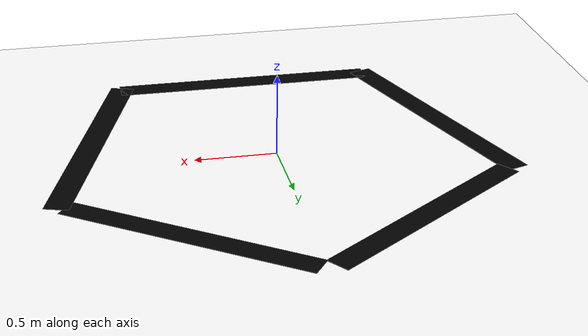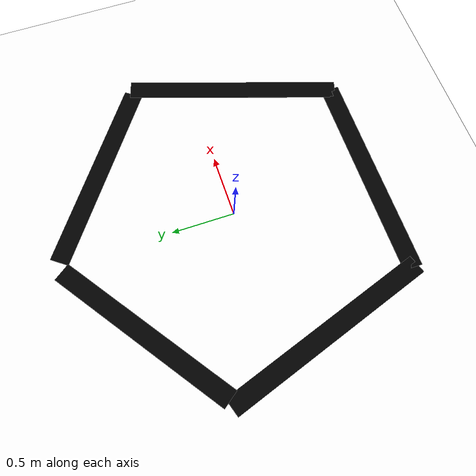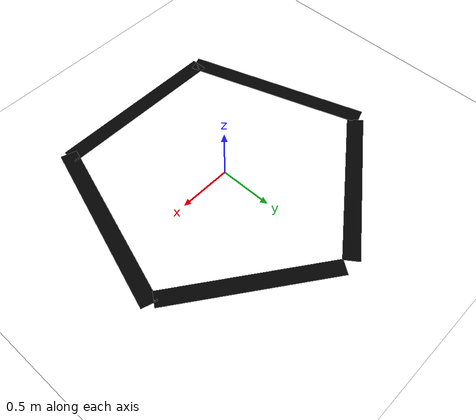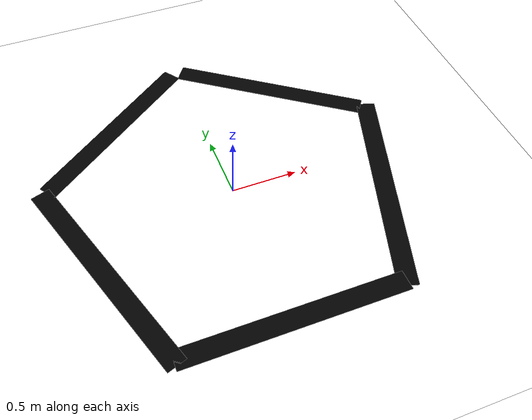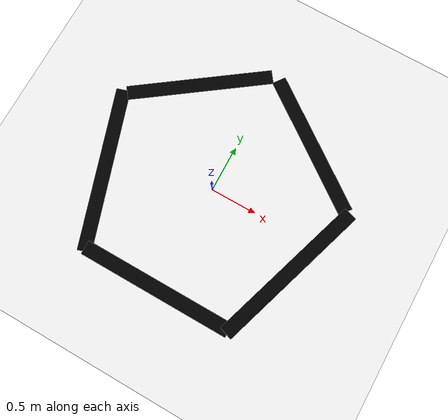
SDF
<?xml version="1.0"?>
<sdf version="1.6">
  <world name="pentagon_line_world">

    <physics type="ode">
      <gravity>0 0 -9.81</gravity>
      <max_step_size>0.001</max_step_size>
      <real_time_factor>1</real_time_factor>
      <real_time_update_rate>1000</real_time_update_rate>
    </physics>

    <light name="sun" type="directional">
      <cast_shadows>false</cast_shadows>
      <pose>0 0 10 0 0 0</pose>
      <diffuse>0.8 0.8 0.8 1</diffuse>
      <specular>0.2 0.2 0.2 1</specular>
      <direction>0 0 -1</direction>
    </light>

    <model name="ground_plane">
      <static>true</static>
      <link name="link">
        <collision name="collision">
          <geometry>
            <plane>
              <normal>0 0 1</normal>
              <size>10 10</size>
            </plane>
          </geometry>
        </collision>
        <visual name="visual">
          <geometry>
            <plane>
              <normal>0 0 1</normal>
              <size>10 10</size>
            </plane>
          </geometry>
          <material>
            <ambient>1 1 1 1</ambient>
            <diffuse>1 1 1 1</diffuse>
          </material>
        </visual>
      </link>
    </model>

    <!-- Pentagon Lines - FLAT on ground -->
    <model name="line_1">
      <static>true</static>
      <pose>0.6655 0.916 0.001 0 0 -0.6283</pose>
      <link name="link">
        <visual name="visual">
          <geometry>
            <box>
              <size>1.55 0.15 0.002</size>
            </box>
          </geometry>
          <material>
            <ambient>0 0 0 1</ambient>
            <diffuse>0 0 0 1</diffuse>
          </material>
        </visual>
      </link>
    </model>

    <model name="line_2">
      <static>true</static>
      <pose>1.077 -0.3505 0.001 0 0 -1.8850</pose>
      <link name="link">
        <visual name="visual">
          <geometry>
            <box>
              <size>1.73 0.15 0.002</size>
            </box>
          </geometry>
          <material>
            <ambient>0 0 0 1</ambient>
            <diffuse>0 0 0 1</diffuse>
          </material>
        </visual>
      </link>
    </model>

    <model name="line_3">
      <static>true</static>
      <pose>0 -1.133 0.001 0 0 0</pose>
      <link name="link">
        <visual name="visual">
          <geometry>
            <box>
              <size>1.65 0.15 0.002</size>
            </box>
          </geometry>
          <material>
            <ambient>0 0 0 1</ambient>
            <diffuse>0 0 0 1</diffuse>
          </material>
        </visual>
      </link>
    </model>

    <model name="line_4">
      <static>true</static>
      <pose>-1.077 -0.3505 0.001 0 0 1.8850</pose>
      <link name="link">
        <visual name="visual">
          <geometry>
            <box>
              <size>1.73 0.15 0.002</size>
            </box>
          </geometry>
          <material>
            <ambient>0 0 0 1</ambient>
            <diffuse>0 0 0 1</diffuse>
          </material>
        </visual>
      </link>
    </model>

    <model name="line_5">
      <static>true</static>
      <pose>-0.6655 0.916 0.001 0 0 0.6283</pose>
      <link name="link">
        <visual name="visual">
          <geometry>
            <box>
              <size>1.55 0.15 0.002</size>
            </box>
          </geometry>
          <material>
            <ambient>0 0 0 1</ambient>
            <diffuse>0 0 0 1</diffuse>
          </material>
        </visual>
      </link>
    </model>

  </world>
</sdf>
